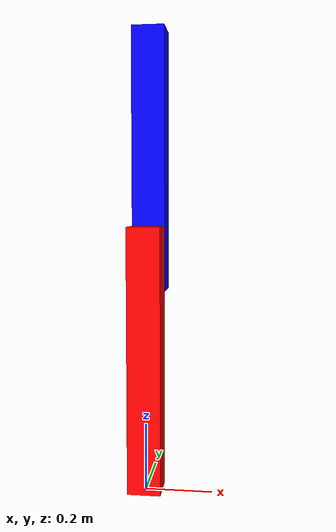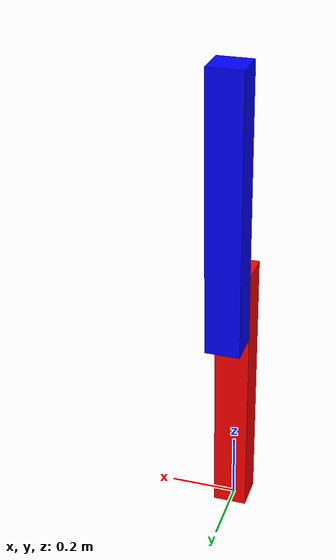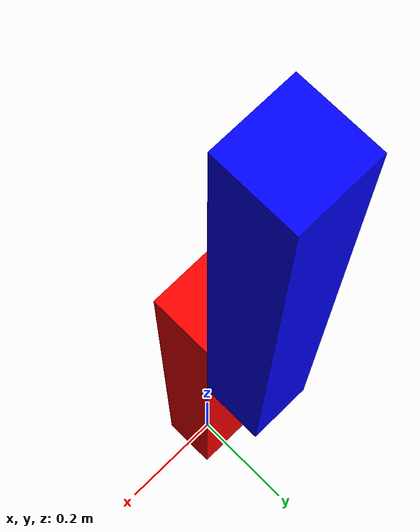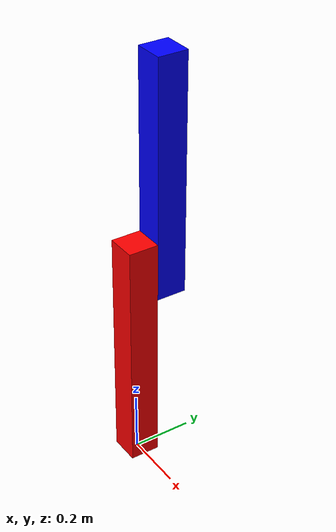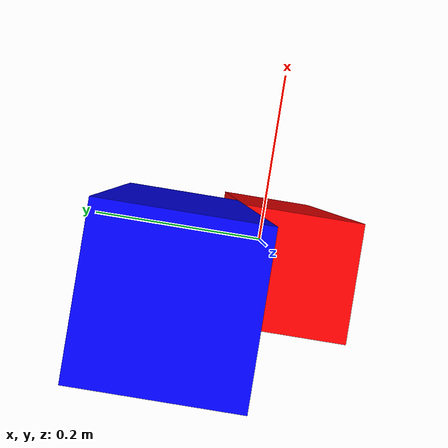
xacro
<?xml version="1.0"?>
<!--URDF DEscription -->
<robot name="simple_robot" xmlns:xacro="http://www.ros.org/wiki/xacro">

    <xacro:include filename="$(find cpp_wcl)/model/parameter.xacro" />
    <link name="world"> </link>
    <joint name="fixed_joint" type="fixed">
        <parent link="world"/>
        <child link="first_link"/>

    </joint>

    <link name="first_link">
        <visual>
            <geometry>
                <box size="${a} ${b} ${c}" />

            </geometry>
            <origin xyz="0.0 0.0 ${s}" rpy="0.0 0.0 0.0"/>
            <material name="red"/>

        </visual>
        <collision>
            <geometry>
                <box size="${a} ${b} ${c}" />

            </geometry>
            <origin xyz="0.0 0.0 ${s}" rpy="0.0 0.0 0.0"/>

        </collision>
        <xacro:inertia_body />
    </link>
    <!-- START: Seconed link of the robot and the first joint -->
     <joint name="first_joint" type="revolute" >
        <parent link="first_link"/>
        <child link="second_link"/>
        <origin xyz="0.0 ${b} ${q}" rpy="0.0 0.0 0.0"/>
        <axis xyz="0.0 1.0 0.0"/>
        <limit effort="5000" velocity="10" lower="-1.571" upper="1.571" />
        <dynamics damping="1.0" friction="1.0"/>

     </joint>

     <link name="second_link">
        <visual>
            <origin xyz="0.0 0.0 ${s}" rpy="0.0 0.0 0.0"/>
            <geometry>
                <box size="${a} ${b} ${c}"/>

            </geometry>
            <material name="blue"/>

        </visual>
        <collision>
            <origin xyz="0.0 0.0 ${s}" rpy="0.0 0.0 0.0"/>
            <geometry>
                <box size="${a} ${b} ${c}"/>

            </geometry>

        </collision>
        <xacro:inertia_body />
     </link>

     <!-- START: ROS2 Control Plugin and Defination-->
      <ros2_control name="RobotController" type="system">

    <hardware>
        <plugin>mock_components/GeneralSystem</plugin>
        <param name="calculate_dynamics">false</param>
        <param name="disable_commands">false</param>
         <param name="mock_gpio_commands">false</param>
        <param name="mock_sensor_commands">false</param>
        <param name="mock_state_following_offset">0.0</param>

    </hardware>
    <joint name="first_joint">
        <command_interface name="position">
            <param name="min">-1.571</param>
            <param name="max">1.571</param>

        </command_interface>
        <state_interface name="position"/>
    </joint>
</ros2_control>

</robot>

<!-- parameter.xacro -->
<!--Robot model parameters -->
 <robot xmlns:xacro="http://www.ros.org/wiki/xacro">

    <!--LLink Dimension-->
    <xacro:property name="a" value="0.1" />
    <xacro:property name="b" value="0.1" />
    <xacro:property name="c" value="0.8" />

      <!--center of mass-->
    <xacro:property name="s" value="${c/2}"/>
    <!--First joint displacemnt along the z axis direction -->
    <xacro:property name="q" value="${c - c/4}"/>

    <!--Material density -->
    <xacro:property name="d" value="2710.0" />

    <!--Mass  -->
    <xacro:property name="m" value="${d*a*b*c}"/>
    <!--Link moments of inertia-->
    <xacro:property name="Ix_body" value="${(1/12)*m*(b*b+c*c)}"/>
    <xacro:property name="Iy_body" value="${(1/12)*m*(a*a+b*b)}"/>
    <xacro:property name="Iz_body" value="${(1/12)*m*(a*a+c*c)}"/>
    <!-- This Macro Defines the complete inertial section of the robot bbody -->
     <!--it is used later in the code -->
     <xacro:macro name="inertia_body">
        <inertial>
            <!-- Displacement and oreinetation of hte center of the focous -->
             <origin xyz="0.0 0.0 ${s}" rpy="0.0 0.0 0.0"/>
             <mass value="${s}"/>
             <mass value="${m}" />
             <inertia ixx="${Ix_body}" ixy="0.0" ixz="0.0" iyy="${Iy_body}" iyz="0" izz="${Iz_body}" />

        </inertial>
     </xacro:macro>
     <!-- Colours -->
      <material name="blue">
        <color rgba="0 0 1 1"/>

      </material>
      <material name="red">
        <color rgba="1 0 0 1"/>

      </material>

 </robot>
